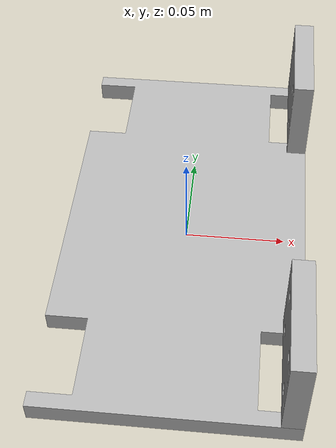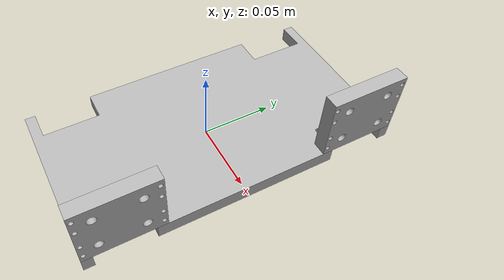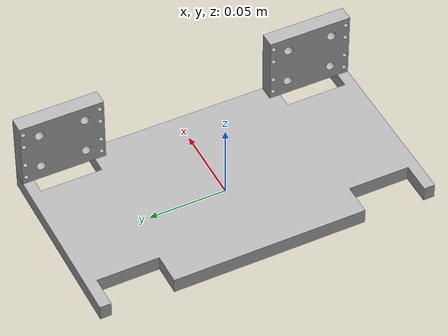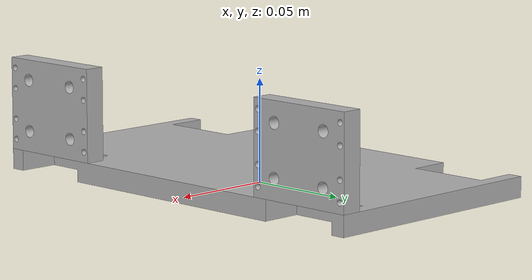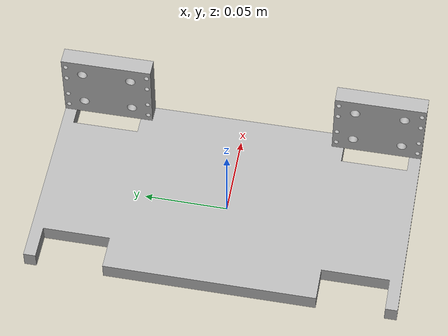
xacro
<?xml version="1.0" ?>
<robot name="quad" xmlns:xacro="http://www.ros.org/wiki/xacro">

<xacro:include filename="$(find quad_description)/urdf/materials.xacro" />
<xacro:include filename="$(find quad_description)/urdf/quad.trans" />
<xacro:include filename="$(find quad_description)/urdf/quad.gazebo" />
<link name="base_link">
  <inertial>
    <origin xyz="0.0 -1.7763568394002505e-17 0.005" rpy="0 0 0"/>
    <mass value="1.8212"/>
    <inertia ixx="0.006618" iyy="0.001866" izz="0.008454" ixy="0.0" iyz="0.0" ixz="0.0"/>
  </inertial>
  <visual>
    <origin xyz="0 0 0" rpy="0 0 0"/>
    <geometry>
      <mesh filename="file://$(find quad_description)/meshes/base_link.stl" scale="0.001 0.001 0.001"/>
    </geometry>
    <material name="silver"/>
  </visual>
  <collision>
    <origin xyz="0 0 0" rpy="0 0 0"/>
    <geometry>
      <mesh filename="file://$(find quad_description)/meshes/base_link.stl" scale="0.001 0.001 0.001"/>
    </geometry>
  </collision>
</link>

<link name="urdf_case_v3_1">
  <inertial>
    <origin xyz="-0.004999999999999977 -0.02725000000001948 0.02249999999999988" rpy="0 0 0"/>
    <mass value="0.17920403874143231"/>
    <inertia ixx="7.3e-05" iyy="3.2e-05" izz="4.4e-05" ixy="-0.0" iyz="0.0" ixz="0.0"/>
  </inertial>
  <visual>
    <origin xyz="-0.06 -0.11 -0.01" rpy="0 0 0"/>
    <geometry>
      <mesh filename="file://$(find quad_description)/meshes/urdf_case_v3_1.stl" scale="0.001 0.001 0.001"/>
    </geometry>
    <material name="silver"/>
  </visual>
  <collision>
    <origin xyz="-0.06 -0.11 -0.01" rpy="0 0 0"/>
    <geometry>
      <mesh filename="file://$(find quad_description)/meshes/urdf_case_v3_1.stl" scale="0.001 0.001 0.001"/>
    </geometry>
  </collision>
</link>

<link name="R2_Case_1">
  <inertial>
    <origin xyz="-0.00500000000000006 0.02724999999998065 0.022500000000000124" rpy="0 0 0"/>
    <mass value="0.17920403874143231"/>
    <inertia ixx="7.3e-05" iyy="3.2e-05" izz="4.4e-05" ixy="-0.0" iyz="0.0" ixz="0.0"/>
  </inertial>
  <visual>
    <origin xyz="-0.06 0.11 -0.01" rpy="0 0 0"/>
    <geometry>
      <mesh filename="file://$(find quad_description)/meshes/R2_Case_1.stl" scale="0.001 0.001 0.001"/>
    </geometry>
    <material name="silver"/>
  </visual>
  <collision>
    <origin xyz="-0.06 0.11 -0.01" rpy="0 0 0"/>
    <geometry>
      <mesh filename="file://$(find quad_description)/meshes/R2_Case_1.stl" scale="0.001 0.001 0.001"/>
    </geometry>
  </collision>
</link>

<joint name="Rigid 1" type="fixed">
  <origin xyz="0.06 0.11 0.01" rpy="0 0 0"/>
  <parent link="base_link"/>
  <child link="urdf_case_v3_1"/>
</joint>

<joint name="Rigid 2" type="fixed">
  <origin xyz="0.06 -0.11 0.01" rpy="0 0 0"/>
  <parent link="base_link"/>
  <child link="R2_Case_1"/>
</joint>

</robot>

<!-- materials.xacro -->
<robot name="quad" xmlns:xacro="http://www.ros.org/wiki/xacro" >

<material name="silver">
  <color rgba="0.700 0.700 0.700 1.000"/>
</material>

</robot>

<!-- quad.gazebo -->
<robot name="quad" xmlns:xacro="http://www.ros.org/wiki/xacro" >

<xacro:property name="body_color" value="Gazebo/Silver" />

<gazebo>
  <plugin name="control" filename="libgazebo_ros_control.so"/>
</gazebo>
<gazebo reference="base_link">
  <material>${body_color}</material>
  <mu1>0.2</mu1>
  <mu2>0.2</mu2>
  <self_collide>true</self_collide>
  <gravity>true</gravity>
</gazebo>

<gazebo reference="urdf_case_v3_1">
  <material>${body_color}</material>
  <mu1>0.2</mu1>
  <mu2>0.2</mu2>
  <self_collide>true</self_collide>
</gazebo>

<gazebo reference="R2_Case_1">
  <material>${body_color}</material>
  <mu1>0.2</mu1>
  <mu2>0.2</mu2>
  <self_collide>true</self_collide>
</gazebo>

</robot>
